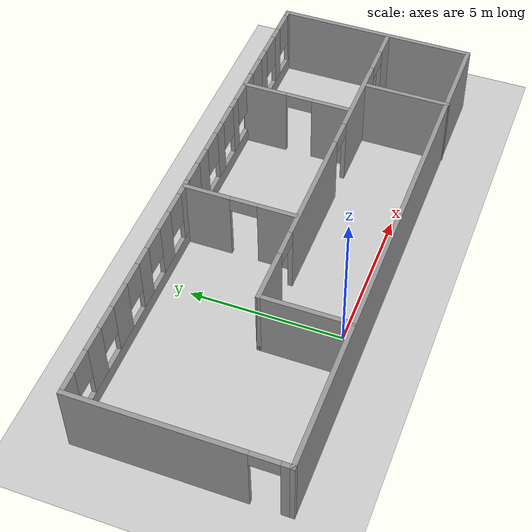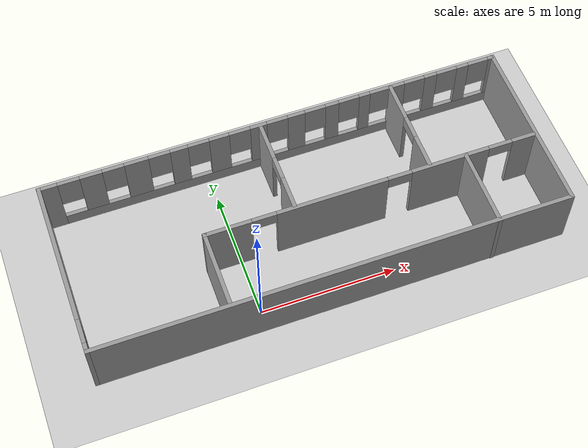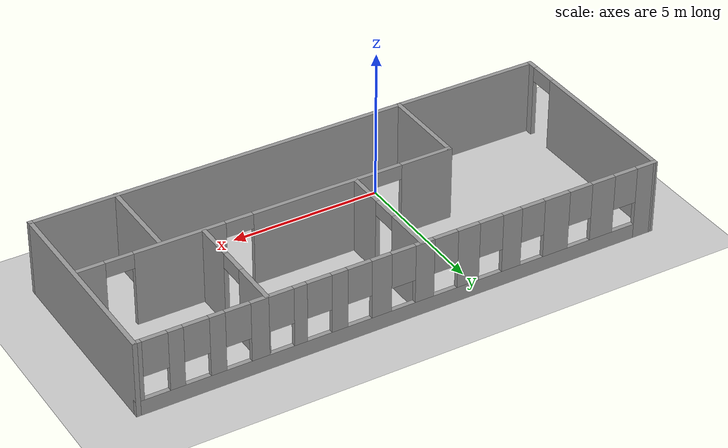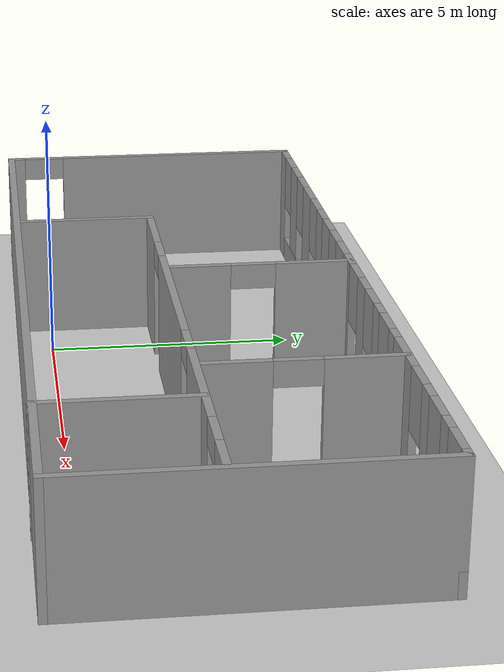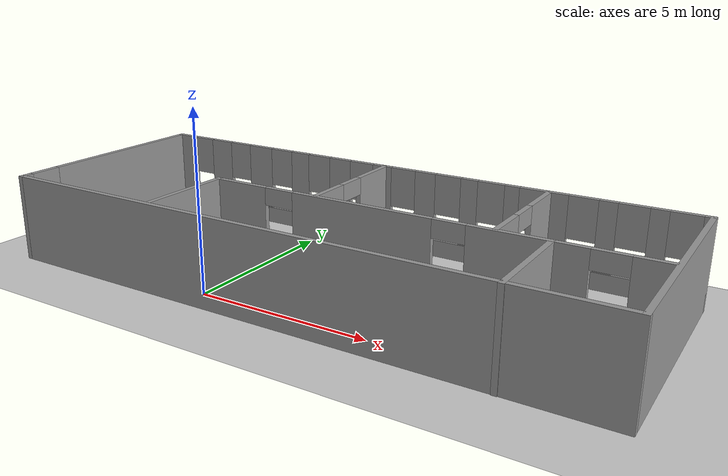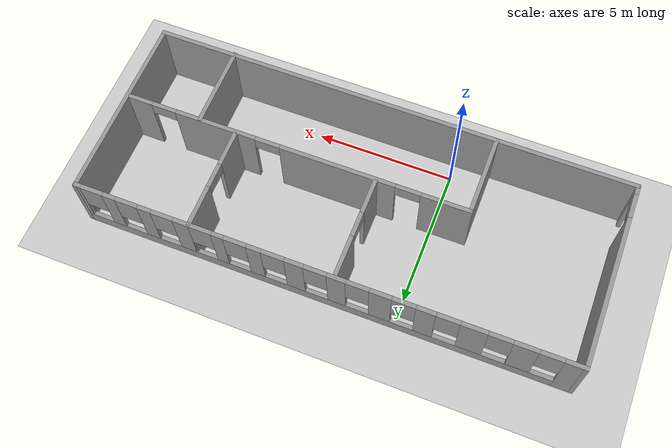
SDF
<sdf version="1.6">
 <world name="default">
  <light name="sun" type="directional">
   <pose>0 0 10 0 -0 0</pose>
   <diffuse>0.8 0.8 0.8 1</diffuse>
   <specular>0.2 0.2 0.2 1</specular>
   <attenuation>
    <range>1000</range>
    <constant>0.9</constant>
    <linear>0.01</linear>
    <quadratic>0.001</quadratic>
   </attenuation>
   <direction>-0.5 0.1 -0.9</direction>
  </light>
  <model name="ground_plane">
   <static>1</static>
   <link name="link">
    <collision name="collision">
     <geometry><plane><normal>0 0 1</normal><size>100 100</size></plane></geometry>
     <surface><friction><ode><mu>100</mu><mu2>50</mu2></ode></friction></surface>
    </collision>
    <visual name="visual">
     <cast_shadows>0</cast_shadows>
     <geometry><plane><normal>0 0 1</normal><size>100 100</size></plane></geometry>
     <material>
      <script><uri>file://media/materials/scripts/gazebo.material</uri><name>Gazebo/Grey</name></script>
     </material>
    </visual>
   </link>
  </model>
  <gravity>0 0 -9.8</gravity>
  <magnetic_field>6e-06 2.3e-05 -4.2e-05</magnetic_field>
  <atmosphere type="adiabatic"/>
  <physics name="default_physics" default="0" type="ode">
   <max_step_size>0.001</max_step_size>
   <real_time_factor>1</real_time_factor>
   <real_time_update_rate>1000</real_time_update_rate>
  </physics>
  <scene><ambient>0.4 0.4 0.4 1</ambient><background>0.7 0.7 0.7 1</background><shadows>1</shadows></scene>
  <spherical_coordinates>
   <surface_model>EARTH_WGS84</surface_model>
   <latitude_deg>0</latitude_deg>
   <longitude_deg>0</longitude_deg>
   <elevation>0</elevation>
   <heading_deg>0</heading_deg>
  </spherical_coordinates>
  <model name="feromon.world">
   <pose>2.575 2.64003 0 0 -0 0</pose>
   <link name="Wall_0">
    <pose>-8.675 0.009974 0 0 -0 1.5708</pose>
    <visual name="Wall_0_Visual_0">
     <pose>-3.17679 0 1.25 0 -0 0</pose>
     <geometry><box><size>0.396428 0.15 2.5</size></box></geometry>
     <material>
      <script><uri>file://media/materials/scripts/gazebo.material</uri><name>Gazebo/Grey</name></script>
      <ambient>1 1 1 1</ambient>
     </material>
     <meta><layer>0</layer></meta>
    </visual>
    <collision name="Wall_0_Collision_0">
     <geometry><box><size>0.396428 0.15 2.5</size></box></geometry>
     <pose>-3.17679 0 1.25 0 -0 0</pose>
    </collision>
    <visual name="Wall_0_Visual_1">
     <pose>0.648214 0 1.25 0 -0 0</pose>
     <geometry><box><size>5.45357 0.15 2.5</size></box></geometry>
     <material>
      <script><uri>file://media/materials/scripts/gazebo.material</uri><name>Gazebo/Grey</name></script>
      <ambient>1 1 1 1</ambient>
     </material>
     <meta><layer>0</layer></meta>
    </visual>
    <collision name="Wall_0_Collision_1">
     <geometry><box><size>5.45357 0.15 2.5</size></box></geometry>
     <pose>0.648214 0 1.25 0 -0 0</pose>
    </collision>
    <visual name="Wall_0_Visual_2">
     <pose>-2.52857 0 2.25 0 -0 0</pose>
     <geometry><box><size>0.9 0.15 0.5</size></box></geometry>
     <material>
      <script><uri>file://media/materials/scripts/gazebo.material</uri><name>Gazebo/Grey</name></script>
      <ambient>1 1 1 1</ambient>
     </material>
     <meta><layer>0</layer></meta>
    </visual>
    <collision name="Wall_0_Collision_2">
     <geometry><box><size>0.9 0.15 0.5</size></box></geometry>
     <pose>-2.52857 0 2.25 0 -0 0</pose>
    </collision>
   </link>
   <link name="Wall_1">
    <pose>0 3.30997 0 0 -0 0</pose>
    <visual name="Wall_1_Visual_0">
     <pose>-8.38078 0 1.25 0 -0 0</pose>
     <geometry><box><size>0.738447 0.15 2.5</size></box></geometry>
     <material>
      <script><uri>file://media/materials/scripts/gazebo.material</uri><name>Gazebo/Grey</name></script>
      <ambient>1 1 1 1</ambient>
     </material>
     <meta><layer>0</layer></meta>
    </visual>
    <collision name="Wall_1_Collision_0">
     <geometry><box><size>0.738447 0.15 2.5</size></box></geometry>
     <pose>-8.38078 0 1.25 0 -0 0</pose>
    </collision>
    <visual name="Wall_1_Visual_1">
     <pose>0.369223 0 0.25 0 -0 0</pose>
     <geometry><box><size>16.7616 0.15 0.5</size></box></geometry>
     <material>
      <script><uri>file://media/materials/scripts/gazebo.material</uri><name>Gazebo/Grey</name></script>
      <ambient>1 1 1 1</ambient>
     </material>
     <meta><layer>0</layer></meta>
    </visual>
    <collision name="Wall_1_Collision_1">
     <geometry><box><size>16.7616 0.15 0.5</size></box></geometry>
     <pose>0.369223 0 0.25 0 -0 0</pose>
    </collision>
    <visual name="Wall_1_Visual_2">
     <pose>-6.80198 0 1.5 0 -0 0</pose>
     <geometry><box><size>0.819142 0.15 2</size></box></geometry>
     <material>
      <script><uri>file://media/materials/scripts/gazebo.material</uri><name>Gazebo/Grey</name></script>
      <ambient>1 1 1 1</ambient>
     </material>
     <meta><layer>0</layer></meta>
    </visual>
    <collision name="Wall_1_Collision_2">
     <geometry><box><size>0.819142 0.15 2</size></box></geometry>
     <pose>-6.80198 0 1.5 0 -0 0</pose>
    </collision>
    <visual name="Wall_1_Visual_3">
     <pose>-5.14814 0 1.5 0 -0 0</pose>
     <geometry><box><size>0.888534 0.15 2</size></box></geometry>
     <material>
      <script><uri>file://media/materials/scripts/gazebo.material</uri><name>Gazebo/Grey</name></script>
      <ambient>1 1 1 1</ambient>
     </material>
     <meta><layer>0</layer></meta>
    </visual>
    <collision name="Wall_1_Collision_3">
     <geometry><box><size>0.888534 0.15 2</size></box></geometry>
     <pose>-5.14814 0 1.5 0 -0 0</pose>
    </collision>
    <visual name="Wall_1_Visual_4">
     <pose>-3.57526 0 1.5 0 -0 0</pose>
     <geometry><box><size>0.657228 0.15 2</size></box></geometry>
     <material>
      <script><uri>file://media/materials/scripts/gazebo.material</uri><name>Gazebo/Grey</name></script>
      <ambient>1 1 1 1</ambient>
     </material>
     <meta><layer>0</layer></meta>
    </visual>
    <collision name="Wall_1_Collision_4">
     <geometry><box><size>0.657228 0.15 2</size></box></geometry>
     <pose>-3.57526 0 1.5 0 -0 0</pose>
    </collision>
    <visual name="Wall_1_Visual_5">
     <pose>-2.07177 0 1.5 0 -0 0</pose>
     <geometry><box><size>0.749751 0.15 2</size></box></geometry>
     <material>
      <script><uri>file://media/materials/scripts/gazebo.material</uri><name>Gazebo/Grey</name></script>
      <ambient>1 1 1 1</ambient>
     </material>
     <meta><layer>0</layer></meta>
    </visual>
    <collision name="Wall_1_Collision_5">
     <geometry><box><size>0.749751 0.15 2</size></box></geometry>
     <pose>-2.07177 0 1.5 0 -0 0</pose>
    </collision>
    <visual name="Wall_1_Visual_6">
     <pose>-0.579849 0 1.5 0 -0 0</pose>
     <geometry><box><size>0.634098 0.15 2</size></box></geometry>
     <material>
      <script><uri>file://media/materials/scripts/gazebo.material</uri><name>Gazebo/Grey</name></script>
      <ambient>1 1 1 1</ambient>
     </material>
     <meta><layer>0</layer></meta>
    </visual>
    <collision name="Wall_1_Collision_6">
     <geometry><box><size>0.634098 0.15 2</size></box></geometry>
     <pose>-0.579849 0 1.5 0 -0 0</pose>
    </collision>
    <visual name="Wall_1_Visual_7">
     <pose>0.865814 0 1.5 0 -0 0</pose>
     <geometry><box><size>0.657228 0.15 2</size></box></geometry>
     <material>
      <script><uri>file://media/materials/scripts/gazebo.material</uri><name>Gazebo/Grey</name></script>
      <ambient>1 1 1 1</ambient>
     </material>
     <meta><layer>0</layer></meta>
    </visual>
    <collision name="Wall_1_Collision_7">
     <geometry><box><size>0.657228 0.15 2</size></box></geometry>
     <pose>0.865814 0 1.5 0 -0 0</pose>
    </collision>
    <visual name="Wall_1_Visual_8">
     <pose>2.25365 0 1.5 0 -0 0</pose>
     <geometry><box><size>0.518445 0.15 2</size></box></geometry>
     <material>
      <script><uri>file://media/materials/scripts/gazebo.material</uri><name>Gazebo/Grey</name></script>
      <ambient>1 1 1 1</ambient>
     </material>
     <meta><layer>0</layer></meta>
    </visual>
    <collision name="Wall_1_Collision_8">
     <geometry><box><size>0.518445 0.15 2</size></box></geometry>
     <pose>2.25365 0 1.5 0 -0 0</pose>
    </collision>
    <visual name="Wall_1_Visual_9">
     <pose>3.52583 0 1.5 0 -0 0</pose>
     <geometry><box><size>0.425922 0.15 2</size></box></geometry>
     <material>
      <script><uri>file://media/materials/scripts/gazebo.material</uri><name>Gazebo/Grey</name></script>
      <ambient>1 1 1 1</ambient>
     </material>
     <meta><layer>0</layer></meta>
    </visual>
    <collision name="Wall_1_Collision_9">
     <geometry><box><size>0.425922 0.15 2</size></box></geometry>
     <pose>3.52583 0 1.5 0 -0 0</pose>
    </collision>
    <visual name="Wall_1_Visual_10">
     <pose>4.82115 0 1.5 0 -0 0</pose>
     <geometry><box><size>0.564706 0.15 2</size></box></geometry>
     <material>
      <script><uri>file://media/materials/scripts/gazebo.material</uri><name>Gazebo/Grey</name></script>
      <ambient>1 1 1 1</ambient>
     </material>
     <meta><layer>0</layer></meta>
    </visual>
    <collision name="Wall_1_Collision_10">
     <geometry><box><size>0.564706 0.15 2</size></box></geometry>
     <pose>4.82115 0 1.5 0 -0 0</pose>
    </collision>
    <visual name="Wall_1_Visual_11">
     <pose>6.15116 0 1.5 0 -0 0</pose>
     <geometry><box><size>0.495314 0.15 2</size></box></geometry>
     <material>
      <script><uri>file://media/materials/scripts/gazebo.material</uri><name>Gazebo/Grey</name></script>
      <ambient>1 1 1 1</ambient>
     </material>
     <meta><layer>0</layer></meta>
    </visual>
    <collision name="Wall_1_Collision_11">
     <geometry><box><size>0.495314 0.15 2</size></box></geometry>
     <pose>6.15116 0 1.5 0 -0 0</pose>
    </collision>
    <visual name="Wall_1_Visual_12">
     <pose>7.43491 0 1.5 0 -0 0</pose>
     <geometry><box><size>0.472183 0.15 2</size></box></geometry>
     <material>
      <script><uri>file://media/materials/scripts/gazebo.material</uri><name>Gazebo/Grey</name></script>
      <ambient>1 1 1 1</ambient>
     </material>
     <meta><layer>0</layer></meta>
    </visual>
    <collision name="Wall_1_Collision_12">
     <geometry><box><size>0.472183 0.15 2</size></box></geometry>
     <pose>7.43491 0 1.5 0 -0 0</pose>
    </collision>
    <visual name="Wall_1_Visual_13">
     <pose>8.6105 0 1.5 0 -0 0</pose>
     <geometry><box><size>0.279002 0.15 2</size></box></geometry>
     <material>
      <script><uri>file://media/materials/scripts/gazebo.material</uri><name>Gazebo/Grey</name></script>
      <ambient>1 1 1 1</ambient>
     </material>
     <meta><layer>0</layer></meta>
    </visual>
    <collision name="Wall_1_Collision_13">
     <geometry><box><size>0.279002 0.15 2</size></box></geometry>
     <pose>8.6105 0 1.5 0 -0 0</pose>
    </collision>
    <visual name="Wall_1_Visual_14">
     <pose>-7.61155 0 1.9 0 -0 0</pose>
     <geometry><box><size>0.8 0.15 1.2</size></box></geometry>
     <material>
      <script><uri>file://media/materials/scripts/gazebo.material</uri><name>Gazebo/Grey</name></script>
      <ambient>1 1 1 1</ambient>
     </material>
     <meta><layer>0</layer></meta>
    </visual>
    <collision name="Wall_1_Collision_14">
     <geometry><box><size>0.8 0.15 1.2</size></box></geometry>
     <pose>-7.61155 0 1.9 0 -0 0</pose>
    </collision>
    <visual name="Wall_1_Visual_15">
     <pose>-5.99241 0 1.9 0 -0 0</pose>
     <geometry><box><size>0.8 0.15 1.2</size></box></geometry>
     <material>
      <script><uri>file://media/materials/scripts/gazebo.material</uri><name>Gazebo/Grey</name></script>
      <ambient>1 1 1 1</ambient>
     </material>
     <meta><layer>0</layer></meta>
    </visual>
    <collision name="Wall_1_Collision_15">
     <geometry><box><size>0.8 0.15 1.2</size></box></geometry>
     <pose>-5.99241 0 1.9 0 -0 0</pose>
    </collision>
    <visual name="Wall_1_Visual_16">
     <pose>-4.30388 0 1.9 0 -0 0</pose>
     <geometry><box><size>0.8 0.15 1.2</size></box></geometry>
     <material>
      <script><uri>file://media/materials/scripts/gazebo.material</uri><name>Gazebo/Grey</name></script>
      <ambient>1 1 1 1</ambient>
     </material>
     <meta><layer>0</layer></meta>
    </visual>
    <collision name="Wall_1_Collision_16">
     <geometry><box><size>0.8 0.15 1.2</size></box></geometry>
     <pose>-4.30388 0 1.9 0 -0 0</pose>
    </collision>
    <visual name="Wall_1_Visual_17">
     <pose>-2.84665 0 1.9 0 -0 0</pose>
     <geometry><box><size>0.8 0.15 1.2</size></box></geometry>
     <material>
      <script><uri>file://media/materials/scripts/gazebo.material</uri><name>Gazebo/Grey</name></script>
      <ambient>1 1 1 1</ambient>
     </material>
     <meta><layer>0</layer></meta>
    </visual>
    <collision name="Wall_1_Collision_17">
     <geometry><box><size>0.8 0.15 1.2</size></box></geometry>
     <pose>-2.84665 0 1.9 0 -0 0</pose>
    </collision>
    <visual name="Wall_1_Visual_18">
     <pose>-1.2969 0 1.9 0 -0 0</pose>
     <geometry><box><size>0.8 0.15 1.2</size></box></geometry>
     <material>
      <script><uri>file://media/materials/scripts/gazebo.material</uri><name>Gazebo/Grey</name></script>
      <ambient>1 1 1 1</ambient>
     </material>
     <meta><layer>0</layer></meta>
    </visual>
    <collision name="Wall_1_Collision_18">
     <geometry><box><size>0.8 0.15 1.2</size></box></geometry>
     <pose>-1.2969 0 1.9 0 -0 0</pose>
    </collision>
    <visual name="Wall_1_Visual_19">
     <pose>0.1372 0 1.9 0 -0 0</pose>
     <geometry><box><size>0.8 0.15 1.2</size></box></geometry>
     <material>
      <script><uri>file://media/materials/scripts/gazebo.material</uri><name>Gazebo/Grey</name></script>
      <ambient>1 1 1 1</ambient>
     </material>
     <meta><layer>0</layer></meta>
    </visual>
    <collision name="Wall_1_Collision_19">
     <geometry><box><size>0.8 0.15 1.2</size></box></geometry>
     <pose>0.1372 0 1.9 0 -0 0</pose>
    </collision>
    <visual name="Wall_1_Visual_20">
     <pose>1.59443 0 1.9 0 -0 0</pose>
     <geometry><box><size>0.8 0.15 1.2</size></box></geometry>
     <material>
      <script><uri>file://media/materials/scripts/gazebo.material</uri><name>Gazebo/Grey</name></script>
      <ambient>1 1 1 1</ambient>
     </material>
     <meta><layer>0</layer></meta>
    </visual>
    <collision name="Wall_1_Collision_20">
     <geometry><box><size>0.8 0.15 1.2</size></box></geometry>
     <pose>1.59443 0 1.9 0 -0 0</pose>
    </collision>
    <visual name="Wall_1_Visual_21">
     <pose>2.91287 0 1.9 0 -0 0</pose>
     <geometry><box><size>0.8 0.15 1.2</size></box></geometry>
     <material>
      <script><uri>file://media/materials/scripts/gazebo.material</uri><name>Gazebo/Grey</name></script>
      <ambient>1 1 1 1</ambient>
     </material>
     <meta><layer>0</layer></meta>
    </visual>
    <collision name="Wall_1_Collision_21">
     <geometry><box><size>0.8 0.15 1.2</size></box></geometry>
     <pose>2.91287 0 1.9 0 -0 0</pose>
    </collision>
    <visual name="Wall_1_Visual_22">
     <pose>4.1388 0 1.9 0 -0 0</pose>
     <geometry><box><size>0.8 0.15 1.2</size></box></geometry>
     <material>
      <script><uri>file://media/materials/scripts/gazebo.material</uri><name>Gazebo/Grey</name></script>
      <ambient>1 1 1 1</ambient>
     </material>
     <meta><layer>0</layer></meta>
    </visual>
    <collision name="Wall_1_Collision_22">
     <geometry><box><size>0.8 0.15 1.2</size></box></geometry>
     <pose>4.1388 0 1.9 0 -0 0</pose>
    </collision>
    <visual name="Wall_1_Visual_23">
     <pose>5.5035 0 1.9 0 -0 0</pose>
     <geometry><box><size>0.8 0.15 1.2</size></box></geometry>
     <material>
      <script><uri>file://media/materials/scripts/gazebo.material</uri><name>Gazebo/Grey</name></script>
      <ambient>1 1 1 1</ambient>
     </material>
     <meta><layer>0</layer></meta>
    </visual>
    <collision name="Wall_1_Collision_23">
     <geometry><box><size>0.8 0.15 1.2</size></box></geometry>
     <pose>5.5035 0 1.9 0 -0 0</pose>
    </collision>
    <visual name="Wall_1_Visual_24">
     <pose>6.79882 0 1.9 0 -0 0</pose>
     <geometry><box><size>0.8 0.15 1.2</size></box></geometry>
     <material>
      <script><uri>file://media/materials/scripts/gazebo.material</uri><name>Gazebo/Grey</name></script>
      <ambient>1 1 1 1</ambient>
     </material>
     <meta><layer>0</layer></meta>
    </visual>
    <collision name="Wall_1_Collision_24">
     <geometry><box><size>0.8 0.15 1.2</size></box></geometry>
     <pose>6.79882 0 1.9 0 -0 0</pose>
    </collision>
    <visual name="Wall_1_Visual_25">
     <pose>8.071 0 1.9 0 -0 0</pose>
     <geometry><box><size>0.8 0.15 1.2</size></box></geometry>
     <material>
      <script><uri>file://media/materials/scripts/gazebo.material</uri><name>Gazebo/Grey</name></script>
      <ambient>1 1 1 1</ambient>
     </material>
     <meta><layer>0</layer></meta>
    </visual>
    <collision name="Wall_1_Collision_25">
     <geometry><box><size>0.8 0.15 1.2</size></box></geometry>
     <pose>8.071 0 1.9 0 -0 0</pose>
    </collision>
   </link>
   <link name="Wall_10">
    <pose>-0.510457 1.46405 0 0 0 -1.5708</pose>
    <visual name="Wall_10_Visual_0">
     <pose>-1.09101 0 1.25 0 -0 0</pose>
     <geometry><box><size>1.56797 0.15 2.5</size></box></geometry>
     <material>
      <script><uri>file://media/materials/scripts/gazebo.material</uri><name>Gazebo/Grey</name></script>
      <ambient>1 1 1 1</ambient>
     </material>
     <meta><layer>0</layer></meta>
    </visual>
    <collision name="Wall_10_Collision_0">
     <geometry><box><size>1.56797 0.15 2.5</size></box></geometry>
     <pose>-1.09101 0 1.25 0 -0 0</pose>
    </collision>
    <visual name="Wall_10_Visual_1">
     <pose>1.23399 0 1.25 0 -0 0</pose>
     <geometry><box><size>1.28203 0.15 2.5</size></box></geometry>
     <material>
      <script><uri>file://media/materials/scripts/gazebo.material</uri><name>Gazebo/Grey</name></script>
      <ambient>1 1 1 1</ambient>
     </material>
     <meta><layer>0</layer></meta>
    </visual>
    <collision name="Wall_10_Collision_1">
     <geometry><box><size>1.28203 0.15 2.5</size></box></geometry>
     <pose>1.23399 0 1.25 0 -0 0</pose>
    </collision>
    <visual name="Wall_10_Visual_2">
     <pose>0.142971 0 2.25 0 -0 0</pose>
     <geometry><box><size>0.9 0.15 0.5</size></box></geometry>
     <material>
      <script><uri>file://media/materials/scripts/gazebo.material</uri><name>Gazebo/Grey</name></script>
      <ambient>1 1 1 1</ambient>
     </material>
     <meta><layer>0</layer></meta>
    </visual>
    <collision name="Wall_10_Collision_2">
     <geometry><box><size>0.9 0.15 0.5</size></box></geometry>
     <pose>0.142971 0 2.25 0 -0 0</pose>
    </collision>
   </link>
   <link name="Wall_12">
    <pose>4.55515 1.46405 0 0 0 -1.5708</pose>
    <visual name="Wall_12_Visual_0">
     <pose>-1.11414 0 1.25 0 -0 0</pose>
     <geometry><box><size>1.52171 0.15 2.5</size></box></geometry>
     <material>
      <script><uri>file://media/materials/scripts/gazebo.material</uri><name>Gazebo/Grey</name></script>
      <ambient>1 1 1 1</ambient>
     </material>
     <meta><layer>0</layer></meta>
    </visual>
    <collision name="Wall_12_Collision_0">
     <geometry><box><size>1.52171 0.15 2.5</size></box></geometry>
     <pose>-1.11414 0 1.25 0 -0 0</pose>
    </collision>
    <visual name="Wall_12_Visual_1">
     <pose>1.21086 0 1.25 0 -0 0</pose>
     <geometry><box><size>1.32829 0.15 2.5</size></box></geometry>
     <material>
      <script><uri>file://media/materials/scripts/gazebo.material</uri><name>Gazebo/Grey</name></script>
      <ambient>1 1 1 1</ambient>
     </material>
     <meta><layer>0</layer></meta>
    </visual>
    <collision name="Wall_12_Collision_1">
     <geometry><box><size>1.32829 0.15 2.5</size></box></geometry>
     <pose>1.21086 0 1.25 0 -0 0</pose>
    </collision>
    <visual name="Wall_12_Visual_2">
     <pose>0.09671 0 2.25 0 -0 0</pose>
     <geometry><box><size>0.9 0.15 0.5</size></box></geometry>
     <material>
      <script><uri>file://media/materials/scripts/gazebo.material</uri><name>Gazebo/Grey</name></script>
      <ambient>1 1 1 1</ambient>
     </material>
     <meta><layer>0</layer></meta>
    </visual>
    <collision name="Wall_12_Collision_2">
     <geometry><box><size>0.9 0.15 0.5</size></box></geometry>
     <pose>0.09671 0 2.25 0 -0 0</pose>
    </collision>
   </link>
   <link name="Wall_2">
    <collision name="Wall_2_Collision">
     <geometry><box><size>6.75 0.15 2.5</size></box></geometry>
     <pose>0 0 1.25 0 -0 0</pose>
    </collision>
    <visual name="Wall_2_Visual">
     <pose>0 0 1.25 0 -0 0</pose>
     <geometry><box><size>6.75 0.15 2.5</size></box></geometry>
     <material>
      <script><uri>file://media/materials/scripts/gazebo.material</uri><name>Gazebo/Grey</name></script>
      <ambient>1 1 1 1</ambient>
     </material>
     <meta><layer>0</layer></meta>
    </visual>
    <pose>8.675 0.009974 0 0 0 -1.5708</pose>
   </link>
   <link name="Wall_3">
    <collision name="Wall_3_Collision">
     <geometry><box><size>17.5 0.15 2.5</size></box></geometry>
     <pose>0 0 1.25 0 -0 0</pose>
    </collision>
    <visual name="Wall_3_Visual">
     <pose>0 0 1.25 0 -0 0</pose>
     <geometry><box><size>17.5 0.15 2.5</size></box></geometry>
     <material>
      <script><uri>file://media/materials/scripts/gazebo.material</uri><name>Gazebo/Grey</name></script>
      <ambient>1 1 1 1</ambient>
     </material>
     <meta><layer>0</layer></meta>
    </visual>
    <pose>0 -3.29003 0 0 -0 3.14159</pose>
   </link>
   <link name="Wall_5">
    <collision name="Wall_5_Collision">
     <geometry><box><size>3 0.15 2.5</size></box></geometry>
     <pose>0 0 1.25 0 -0 0</pose>
    </collision>
    <visual name="Wall_5_Visual">
     <pose>0 0 1.25 0 -0 0</pose>
     <geometry><box><size>3 0.15 2.5</size></box></geometry>
     <material>
      <script><uri>file://media/materials/scripts/gazebo.material</uri><name>Gazebo/Grey</name></script>
      <ambient>1 1 1 1</ambient>
     </material>
     <meta><layer>0</layer></meta>
    </visual>
    <pose>-3.795 -1.85691 0 0 -0 1.5708</pose>
   </link>
   <link name="Wall_6">
    <pose>2.38 -0.431908 0 0 -0 0</pose>
    <visual name="Wall_6_Visual_0">
     <pose>-5.36193 0 1.25 0 -0 0</pose>
     <geometry><box><size>1.77615 0.15 2.5</size></box></geometry>
     <material>
      <script><uri>file://media/materials/scripts/gazebo.material</uri><name>Gazebo/Grey</name></script>
      <ambient>1 1 1 1</ambient>
     </material>
     <meta><layer>0</layer></meta>
    </visual>
    <collision name="Wall_6_Collision_0">
     <geometry><box><size>1.77615 0.15 2.5</size></box></geometry>
     <pose>-5.36193 0 1.25 0 -0 0</pose>
    </collision>
    <visual name="Wall_6_Visual_1">
     <pose>-1.50262 0 1.25 0 -0 0</pose>
     <geometry><box><size>4.14247 0.15 2.5</size></box></geometry>
     <material>
      <script><uri>file://media/materials/scripts/gazebo.material</uri><name>Gazebo/Grey</name></script>
      <ambient>1 1 1 1</ambient>
     </material>
     <meta><layer>0</layer></meta>
    </visual>
    <collision name="Wall_6_Collision_1">
     <geometry><box><size>4.14247 0.15 2.5</size></box></geometry>
     <pose>-1.50262 0 1.25 0 -0 0</pose>
    </collision>
    <visual name="Wall_6_Visual_2">
     <pose>2.95003 0 1.25 0 -0 0</pose>
     <geometry><box><size>2.96281 0.15 2.5</size></box></geometry>
     <material>
      <script><uri>file://media/materials/scripts/gazebo.material</uri><name>Gazebo/Grey</name></script>
      <ambient>1 1 1 1</ambient>
     </material>
     <meta><layer>0</layer></meta>
    </visual>
    <collision name="Wall_6_Collision_2">
     <geometry><box><size>2.96281 0.15 2.5</size></box></geometry>
     <pose>2.95003 0 1.25 0 -0 0</pose>
    </collision>
    <visual name="Wall_6_Visual_3">
     <pose>5.79071 0 1.25 0 -0 0</pose>
     <geometry><box><size>0.91857 0.15 2.5</size></box></geometry>
     <material>
      <script><uri>file://media/materials/scripts/gazebo.material</uri><name>Gazebo/Grey</name></script>
      <ambient>1 1 1 1</ambient>
     </material>
     <meta><layer>0</layer></meta>
    </visual>
    <collision name="Wall_6_Collision_3">
     <geometry><box><size>0.91857 0.15 2.5</size></box></geometry>
     <pose>5.79071 0 1.25 0 -0 0</pose>
    </collision>
    <visual name="Wall_6_Visual_4">
     <pose>-4.02385 0 2.25 0 -0 0</pose>
     <geometry><box><size>0.9 0.15 0.5</size></box></geometry>
     <material>
      <script><uri>file://media/materials/scripts/gazebo.material</uri><name>Gazebo/Grey</name></script>
      <ambient>1 1 1 1</ambient>
     </material>
     <meta><layer>0</layer></meta>
    </visual>
    <collision name="Wall_6_Collision_4">
     <geometry><box><size>0.9 0.15 0.5</size></box></geometry>
     <pose>-4.02385 0 2.25 0 -0 0</pose>
    </collision>
    <visual name="Wall_6_Visual_5">
     <pose>1.01862 0 2.25 0 -0 0</pose>
     <geometry><box><size>0.9 0.15 0.5</size></box></geometry>
     <material>
      <script><uri>file://media/materials/scripts/gazebo.material</uri><name>Gazebo/Grey</name></script>
      <ambient>1 1 1 1</ambient>
     </material>
     <meta><layer>0</layer></meta>
    </visual>
    <collision name="Wall_6_Collision_5">
     <geometry><box><size>0.9 0.15 0.5</size></box></geometry>
     <pose>1.01862 0 2.25 0 -0 0</pose>
    </collision>
    <visual name="Wall_6_Visual_6">
     <pose>4.88143 0 2.25 0 -0 0</pose>
     <geometry><box><size>0.9 0.15 0.5</size></box></geometry>
     <material>
      <script><uri>file://media/materials/scripts/gazebo.material</uri><name>Gazebo/Grey</name></script>
      <ambient>1 1 1 1</ambient>
     </material>
     <meta><layer>0</layer></meta>
    </visual>
    <collision name="Wall_6_Collision_6">
     <geometry><box><size>0.9 0.15 0.5</size></box></geometry>
     <pose>4.88143 0 2.25 0 -0 0</pose>
    </collision>
   </link>
   <link name="Wall_8">
    <collision name="Wall_8_Collision">
     <geometry><box><size>3 0.15 2.5</size></box></geometry>
     <pose>0 0 1.25 0 -0 0</pose>
    </collision>
    <visual name="Wall_8_Visual">
     <pose>0 0 1.25 0 -0 0</pose>
     <geometry><box><size>3 0.15 2.5</size></box></geometry>
     <material>
      <script><uri>file://media/materials/scripts/gazebo.material</uri><name>Gazebo/Grey</name></script>
      <ambient>1 1 1 1</ambient>
     </material>
     <meta><layer>0</layer></meta>
    </visual>
    <pose>5.91985 -1.88497 0 0 0 -1.5708</pose>
   </link>
   <static>1</static>
  </model>
 </world>
</sdf>
